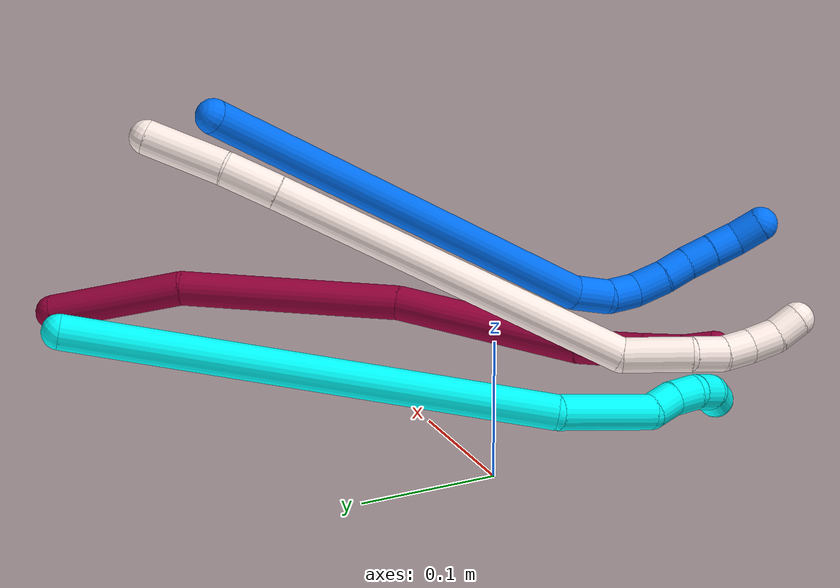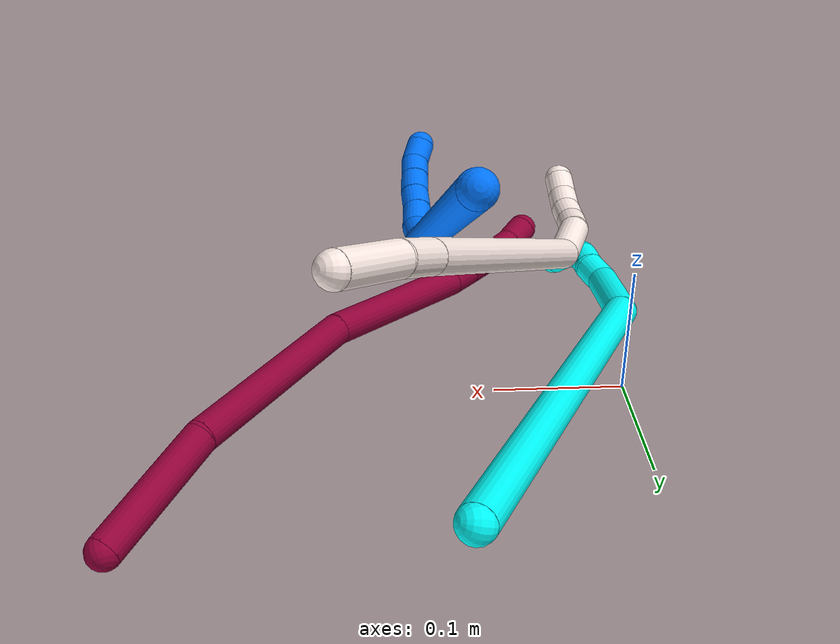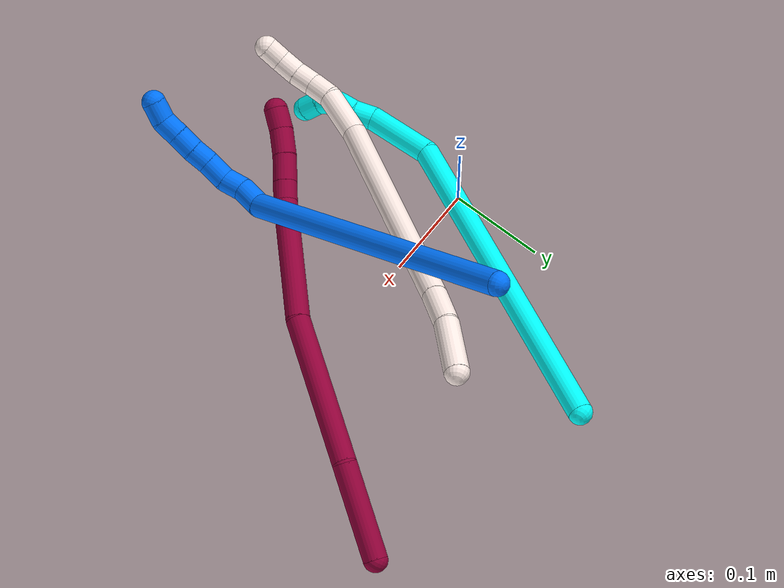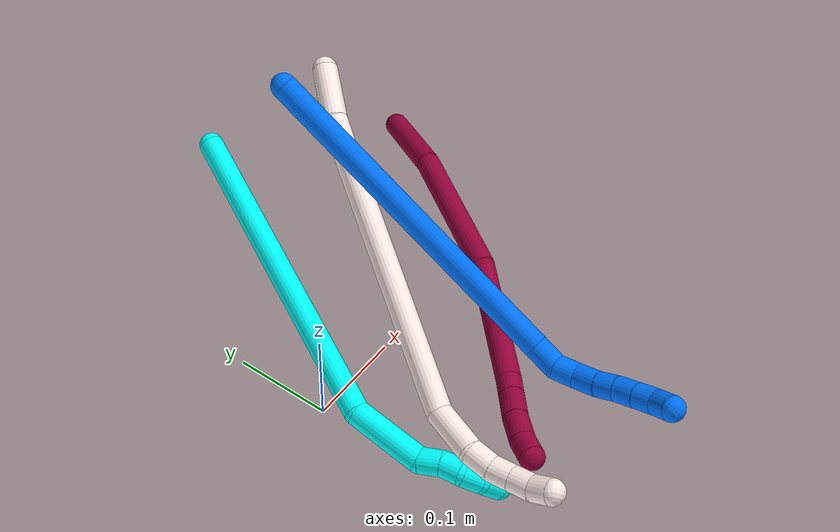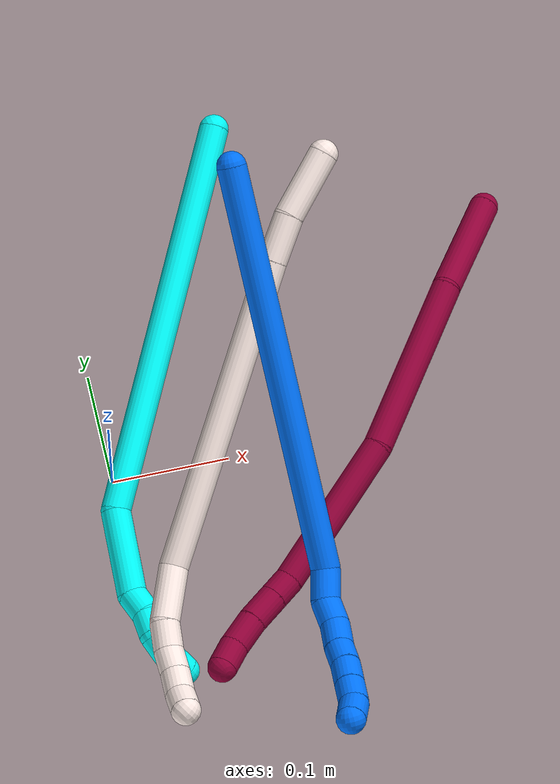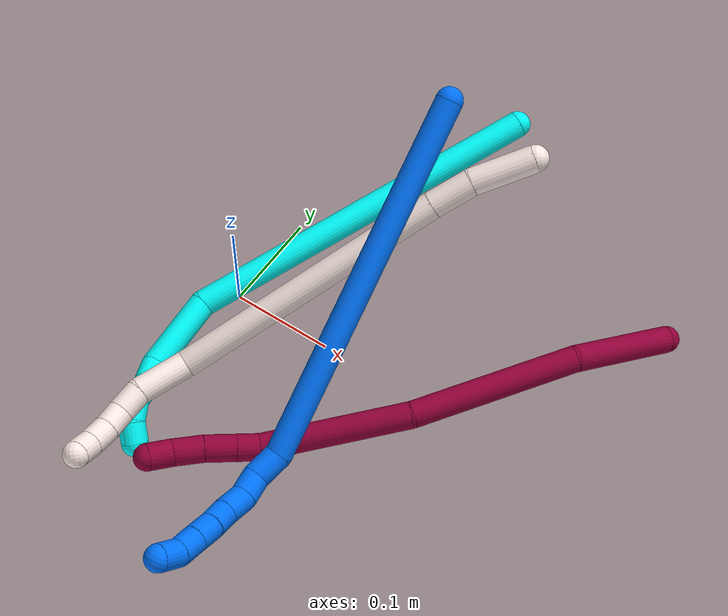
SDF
<sdf version="1.7">
 <world name="default">
  <model name="3">
   <static>0</static>
   <link name="3">
    <collision name="collision-cylinder-e_1_1_4">
     <pose>-0.073164 -0.105286 -0.114995 2.40024 -0.438757 -1.04173</pose>
     <geometry><cylinder><radius>0.0125</radius><length>0.344453</length></cylinder></geometry>
     <surface>
      <friction><ode><mu>1.16</mu><mu2>1.16</mu2><slip1>0</slip1><slip2>0</slip2></ode></friction>
      <contact><ode><kp>1e+06</kp><kd>1</kd><max_vel>0</max_vel><min_depth>0.001</min_depth></ode></contact>
     </surface>
    </collision>
    <visual name="visual-cylinder-e_1_1_4">
     <pose>-0.073164 -0.105286 -0.114995 2.40024 -0.438757 -1.04173</pose>
     <geometry><cylinder><radius>0.0125</radius><length>0.344453</length></cylinder></geometry>
     <material><ambient>0.003922 1 0.996078 1</ambient></material>
    </visual>
    <collision name="collision-cylinder-e_2_4_5">
     <pose>-0.16104 -0.241994 -0.241622 1.92537 -0.413731 -0.585639</pose>
     <geometry><cylinder><radius>0.0125</radius><length>0.073187</length></cylinder></geometry>
     <surface>
      <friction><ode><mu>1.16</mu><mu2>1.16</mu2><slip1>0</slip1><slip2>0</slip2></ode></friction>
      <contact><ode><kp>1e+06</kp><kd>1</kd><max_vel>0</max_vel><min_depth>0.001</min_depth></ode></contact>
     </surface>
    </collision>
    <visual name="visual-cylinder-e_2_4_5">
     <pose>-0.16104 -0.241994 -0.241622 1.92537 -0.413731 -0.585639</pose>
     <geometry><cylinder><radius>0.0125</radius><length>0.073187</length></cylinder></geometry>
     <material><ambient>0.003922 1 0.996078 1</ambient></material>
    </visual>
    <collision name="collision-cylinder-e_3_5_6">
     <pose>-0.181938 -0.282456 -0.2517 1.40042 -0.59335 -0.504226</pose>
     <geometry><cylinder><radius>0.0125</radius><length>0.022128</length></cylinder></geometry>
     <surface>
      <friction><ode><mu>1.16</mu><mu2>1.16</mu2><slip1>0</slip1><slip2>0</slip2></ode></friction>
      <contact><ode><kp>1e+06</kp><kd>1</kd><max_vel>0</max_vel><min_depth>0.001</min_depth></ode></contact>
     </surface>
    </collision>
    <visual name="visual-cylinder-e_3_5_6">
     <pose>-0.181938 -0.282456 -0.2517 1.40042 -0.59335 -0.504226</pose>
     <geometry><cylinder><radius>0.0125</radius><length>0.022128</length></cylinder></geometry>
     <material><ambient>0.003922 1 0.996078 1</ambient></material>
    </visual>
    <collision name="collision-cylinder-e_4_6_7">
     <pose>-0.193634 -0.299791 -0.251484 1.73093 -0.580374 -0.674629</pose>
     <geometry><cylinder><radius>0.0125</radius><length>0.020097</length></cylinder></geometry>
     <surface>
      <friction><ode><mu>1.16</mu><mu2>1.16</mu2><slip1>0</slip1><slip2>0</slip2></ode></friction>
      <contact><ode><kp>1e+06</kp><kd>1</kd><max_vel>0</max_vel><min_depth>0.001</min_depth></ode></contact>
     </surface>
    </collision>
    <visual name="visual-cylinder-e_4_6_7">
     <pose>-0.193634 -0.299791 -0.251484 1.73093 -0.580374 -0.674629</pose>
     <geometry><cylinder><radius>0.0125</radius><length>0.020097</length></cylinder></geometry>
     <material><ambient>0.003922 1 0.996078 1</ambient></material>
    </visual>
    <collision name="collision-cylinder-e_5_7_8">
     <pose>-0.200496 -0.318035 -0.252403 1.52848 -0.13495 -0.129373</pose>
     <geometry><cylinder><radius>0.0125</radius><length>0.020098</length></cylinder></geometry>
     <surface>
      <friction><ode><mu>1.16</mu><mu2>1.16</mu2><slip1>0</slip1><slip2>0</slip2></ode></friction>
      <contact><ode><kp>1e+06</kp><kd>1</kd><max_vel>0</max_vel><min_depth>0.001</min_depth></ode></contact>
     </surface>
    </collision>
    <visual name="visual-cylinder-e_5_7_8">
     <pose>-0.200496 -0.318035 -0.252403 1.52848 -0.13495 -0.129373</pose>
     <geometry><cylinder><radius>0.0125</radius><length>0.020098</length></cylinder></geometry>
     <material><ambient>0.003922 1 0.996078 1</ambient></material>
    </visual>
    <collision name="collision-cylinder-e_6_8_2">
     <pose>-0.198943 -0.337446 -0.250433 1.40859 0.294203 0.250472</pose>
     <geometry><cylinder><radius>0.0125</radius><length>0.020038</length></cylinder></geometry>
     <surface>
      <friction><ode><mu>1.16</mu><mu2>1.16</mu2><slip1>0</slip1><slip2>0</slip2></ode></friction>
      <contact><ode><kp>1e+06</kp><kd>1</kd><max_vel>0</max_vel><min_depth>0.001</min_depth></ode></contact>
     </surface>
    </collision>
    <visual name="visual-cylinder-e_6_8_2">
     <pose>-0.198943 -0.337446 -0.250433 1.40859 0.294203 0.250472</pose>
     <geometry><cylinder><radius>0.0125</radius><length>0.020038</length></cylinder></geometry>
     <material><ambient>0.003922 1 0.996078 1</ambient></material>
    </visual>
    <collision name="collision-sphere-2">
     <pose>-0.196038 -0.346909 -0.248885 0 -0 0</pose>
     <geometry><sphere><radius>0.0125</radius></sphere></geometry>
     <surface>
      <friction><ode><mu>1.16</mu><mu2>1.16</mu2><slip1>0</slip1><slip2>0</slip2></ode></friction>
      <contact><ode><kp>1e+06</kp><kd>1</kd><max_vel>0</max_vel><min_depth>0.001</min_depth></ode></contact>
     </surface>
    </collision>
    <visual name="visual-sphere-2">
     <pose>-0.196038 -0.346909 -0.248885 0 -0 0</pose>
     <geometry><sphere><radius>0.0125</radius></sphere></geometry>
     <material><ambient>0.003922 1 0.996078 1</ambient></material>
    </visual>
    <collision name="collision-sphere-4">
     <pose>-0.146329 -0.210573 -0.229989 0 -0 0</pose>
     <geometry><sphere><radius>0.0125</radius></sphere></geometry>
     <surface>
      <friction><ode><mu>1.16</mu><mu2>1.16</mu2><slip1>0</slip1><slip2>0</slip2></ode></friction>
      <contact><ode><kp>1e+06</kp><kd>1</kd><max_vel>0</max_vel><min_depth>0.001</min_depth></ode></contact>
     </surface>
    </collision>
    <visual name="visual-sphere-4">
     <pose>-0.146329 -0.210573 -0.229989 0 -0 0</pose>
     <geometry><sphere><radius>0.0125</radius></sphere></geometry>
     <material><ambient>0.003922 1 0.996078 1</ambient></material>
    </visual>
    <collision name="collision-sphere-1">
     <geometry><sphere><radius>0.0125</radius></sphere></geometry>
     <surface>
      <friction><ode><mu>1.16</mu><mu2>1.16</mu2><slip1>0</slip1><slip2>0</slip2></ode></friction>
      <contact><ode><kp>1e+06</kp><kd>1</kd><max_vel>0</max_vel><min_depth>0.001</min_depth></ode></contact>
     </surface>
    </collision>
    <visual name="visual-sphere-1">
     <geometry><sphere><radius>0.0125</radius></sphere></geometry>
     <material><ambient>0.003922 1 0.996078 1</ambient></material>
    </visual>
    <collision name="collision-sphere-8">
     <pose>-0.201848 -0.327984 -0.251982 0 -0 0</pose>
     <geometry><sphere><radius>0.0125</radius></sphere></geometry>
     <surface>
      <friction><ode><mu>1.16</mu><mu2>1.16</mu2><slip1>0</slip1><slip2>0</slip2></ode></friction>
      <contact><ode><kp>1e+06</kp><kd>1</kd><max_vel>0</max_vel><min_depth>0.001</min_depth></ode></contact>
     </surface>
    </collision>
    <visual name="visual-sphere-8">
     <pose>-0.201848 -0.327984 -0.251982 0 -0 0</pose>
     <geometry><sphere><radius>0.0125</radius></sphere></geometry>
     <material><ambient>0.003922 1 0.996078 1</ambient></material>
    </visual>
    <collision name="collision-sphere-5">
     <pose>-0.175752 -0.273416 -0.253255 0 -0 0</pose>
     <geometry><sphere><radius>0.0125</radius></sphere></geometry>
     <surface>
      <friction><ode><mu>1.16</mu><mu2>1.16</mu2><slip1>0</slip1><slip2>0</slip2></ode></friction>
      <contact><ode><kp>1e+06</kp><kd>1</kd><max_vel>0</max_vel><min_depth>0.001</min_depth></ode></contact>
     </surface>
    </collision>
    <visual name="visual-sphere-5">
     <pose>-0.175752 -0.273416 -0.253255 0 -0 0</pose>
     <geometry><sphere><radius>0.0125</radius></sphere></geometry>
     <material><ambient>0.003922 1 0.996078 1</ambient></material>
    </visual>
    <collision name="collision-sphere-6">
     <pose>-0.188124 -0.291496 -0.250145 0 -0 0</pose>
     <geometry><sphere><radius>0.0125</radius></sphere></geometry>
     <surface>
      <friction><ode><mu>1.16</mu><mu2>1.16</mu2><slip1>0</slip1><slip2>0</slip2></ode></friction>
      <contact><ode><kp>1e+06</kp><kd>1</kd><max_vel>0</max_vel><min_depth>0.001</min_depth></ode></contact>
     </surface>
    </collision>
    <visual name="visual-sphere-6">
     <pose>-0.188124 -0.291496 -0.250145 0 -0 0</pose>
     <geometry><sphere><radius>0.0125</radius></sphere></geometry>
     <material><ambient>0.003922 1 0.996078 1</ambient></material>
    </visual>
    <collision name="collision-sphere-7">
     <pose>-0.199144 -0.308087 -0.252824 0 -0 0</pose>
     <geometry><sphere><radius>0.0125</radius></sphere></geometry>
     <surface>
      <friction><ode><mu>1.16</mu><mu2>1.16</mu2><slip1>0</slip1><slip2>0</slip2></ode></friction>
      <contact><ode><kp>1e+06</kp><kd>1</kd><max_vel>0</max_vel><min_depth>0.001</min_depth></ode></contact>
     </surface>
    </collision>
    <visual name="visual-sphere-7">
     <pose>-0.199144 -0.308087 -0.252824 0 -0 0</pose>
     <geometry><sphere><radius>0.0125</radius></sphere></geometry>
     <material><ambient>0.003922 1 0.996078 1</ambient></material>
    </visual>
    <inertial>
     <pose>-0.105842 -0.158811 -0.156017 0 -0 0</pose>
     <mass>0.5</mass>
     <inertia>
      <ixx>-0.001112</ixx>
      <ixy>0</ixy>
      <ixz>0</ixz>
      <iyy>-0.003146</iyy>
      <iyz>0</iyz>
      <izz>0.003575</izz>
     </inertia>
    </inertial>
   </link>
   <pose>0.145092 0.258171 0.100116 0.922281 0.9504 1.27699</pose>
  </model>
  <model name="8">
   <static>0</static>
   <link name="8">
    <collision name="collision-cylinder-e_1_1_4">
     <pose>0.006402 -0.037825 -0.031713 2.26852 0.128972 0.275073</pose>
     <geometry><cylinder><radius>0.0125</radius><length>0.099548</length></cylinder></geometry>
     <surface>
      <friction><ode><mu>1.16</mu><mu2>1.16</mu2><slip1>0</slip1><slip2>0</slip2></ode></friction>
      <contact><ode><kp>1e+06</kp><kd>1</kd><max_vel>0</max_vel><min_depth>0.001</min_depth></ode></contact>
     </surface>
    </collision>
    <visual name="visual-cylinder-e_1_1_4">
     <pose>0.006402 -0.037825 -0.031713 2.26852 0.128972 0.275073</pose>
     <geometry><cylinder><radius>0.0125</radius><length>0.099548</length></cylinder></geometry>
     <material><ambient>0.584314 0 0.227451 1</ambient></material>
    </visual>
    <collision name="collision-cylinder-e_2_4_5">
     <pose>0.005709 -0.14331 -0.105932 2.13171 -0.088555 -0.159975</pose>
     <geometry><cylinder><radius>0.0125</radius><length>0.160436</length></cylinder></geometry>
     <surface>
      <friction><ode><mu>1.16</mu><mu2>1.16</mu2><slip1>0</slip1><slip2>0</slip2></ode></friction>
      <contact><ode><kp>1e+06</kp><kd>1</kd><max_vel>0</max_vel><min_depth>0.001</min_depth></ode></contact>
     </surface>
    </collision>
    <visual name="visual-cylinder-e_2_4_5">
     <pose>0.005709 -0.14331 -0.105932 2.13171 -0.088555 -0.159975</pose>
     <geometry><cylinder><radius>0.0125</radius><length>0.160436</length></cylinder></geometry>
     <material><ambient>0.584314 0 0.227451 1</ambient></material>
    </visual>
    <collision name="collision-cylinder-e_3_5_6">
     <pose>-0.007059 -0.27573 -0.171818 1.91727 -0.082223 -0.117036</pose>
     <geometry><cylinder><radius>0.0125</radius><length>0.138168</length></cylinder></geometry>
     <surface>
      <friction><ode><mu>1.16</mu><mu2>1.16</mu2><slip1>0</slip1><slip2>0</slip2></ode></friction>
      <contact><ode><kp>1e+06</kp><kd>1</kd><max_vel>0</max_vel><min_depth>0.001</min_depth></ode></contact>
     </surface>
    </collision>
    <visual name="visual-cylinder-e_3_5_6">
     <pose>-0.007059 -0.27573 -0.171818 1.91727 -0.082223 -0.117036</pose>
     <geometry><cylinder><radius>0.0125</radius><length>0.138168</length></cylinder></geometry>
     <material><ambient>0.584314 0 0.227451 1</ambient></material>
    </visual>
    <collision name="collision-cylinder-e_4_6_7">
     <pose>-0.011166 -0.350383 -0.199101 1.9465 0.146263 0.214479</pose>
     <geometry><cylinder><radius>0.0125</radius><length>0.021502</length></cylinder></geometry>
     <surface>
      <friction><ode><mu>1.16</mu><mu2>1.16</mu2><slip1>0</slip1><slip2>0</slip2></ode></friction>
      <contact><ode><kp>1e+06</kp><kd>1</kd><max_vel>0</max_vel><min_depth>0.001</min_depth></ode></contact>
     </surface>
    </collision>
    <visual name="visual-cylinder-e_4_6_7">
     <pose>-0.011166 -0.350383 -0.199101 1.9465 0.146263 0.214479</pose>
     <geometry><cylinder><radius>0.0125</radius><length>0.021502</length></cylinder></geometry>
     <material><ambient>0.584314 0 0.227451 1</ambient></material>
    </visual>
    <collision name="collision-cylinder-e_5_7_8">
     <pose>-0.007386 -0.373533 -0.208298 1.95074 0.153834 0.226556</pose>
     <geometry><cylinder><radius>0.0125</radius><length>0.028888</length></cylinder></geometry>
     <surface>
      <friction><ode><mu>1.16</mu><mu2>1.16</mu2><slip1>0</slip1><slip2>0</slip2></ode></friction>
      <contact><ode><kp>1e+06</kp><kd>1</kd><max_vel>0</max_vel><min_depth>0.001</min_depth></ode></contact>
     </surface>
    </collision>
    <visual name="visual-cylinder-e_5_7_8">
     <pose>-0.007386 -0.373533 -0.208298 1.95074 0.153834 0.226556</pose>
     <geometry><cylinder><radius>0.0125</radius><length>0.028888</length></cylinder></geometry>
     <material><ambient>0.584314 0 0.227451 1</ambient></material>
    </visual>
    <collision name="collision-cylinder-e_6_8_9">
     <pose>-0.003932 -0.399473 -0.219864 2.03007 0.08747 0.140696</pose>
     <geometry><cylinder><radius>0.0125</radius><length>0.02841</length></cylinder></geometry>
     <surface>
      <friction><ode><mu>1.16</mu><mu2>1.16</mu2><slip1>0</slip1><slip2>0</slip2></ode></friction>
      <contact><ode><kp>1e+06</kp><kd>1</kd><max_vel>0</max_vel><min_depth>0.001</min_depth></ode></contact>
     </surface>
    </collision>
    <visual name="visual-cylinder-e_6_8_9">
     <pose>-0.003932 -0.399473 -0.219864 2.03007 0.08747 0.140696</pose>
     <geometry><cylinder><radius>0.0125</radius><length>0.02841</length></cylinder></geometry>
     <material><ambient>0.584314 0 0.227451 1</ambient></material>
    </visual>
    <collision name="collision-cylinder-e_7_9_2">
     <pose>-0.001275 -0.421414 -0.232854 2.1985 0.123204 0.240755</pose>
     <geometry><cylinder><radius>0.0125</radius><length>0.023048</length></cylinder></geometry>
     <surface>
      <friction><ode><mu>1.16</mu><mu2>1.16</mu2><slip1>0</slip1><slip2>0</slip2></ode></friction>
      <contact><ode><kp>1e+06</kp><kd>1</kd><max_vel>0</max_vel><min_depth>0.001</min_depth></ode></contact>
     </surface>
    </collision>
    <visual name="visual-cylinder-e_7_9_2">
     <pose>-0.001275 -0.421414 -0.232854 2.1985 0.123204 0.240755</pose>
     <geometry><cylinder><radius>0.0125</radius><length>0.023048</length></cylinder></geometry>
     <material><ambient>0.584314 0 0.227451 1</ambient></material>
    </visual>
    <collision name="collision-sphere-2">
     <pose>0.000141 -0.43067 -0.23957 0 -0 0</pose>
     <geometry><sphere><radius>0.0125</radius></sphere></geometry>
     <surface>
      <friction><ode><mu>1.16</mu><mu2>1.16</mu2><slip1>0</slip1><slip2>0</slip2></ode></friction>
      <contact><ode><kp>1e+06</kp><kd>1</kd><max_vel>0</max_vel><min_depth>0.001</min_depth></ode></contact>
     </surface>
    </collision>
    <visual name="visual-sphere-2">
     <pose>0.000141 -0.43067 -0.23957 0 -0 0</pose>
     <geometry><sphere><radius>0.0125</radius></sphere></geometry>
     <material><ambient>0.584314 0 0.227451 1</ambient></material>
    </visual>
    <collision name="collision-sphere-9">
     <pose>-0.002691 -0.412157 -0.226137 0 -0 0</pose>
     <geometry><sphere><radius>0.0125</radius></sphere></geometry>
     <surface>
      <friction><ode><mu>1.16</mu><mu2>1.16</mu2><slip1>0</slip1><slip2>0</slip2></ode></friction>
      <contact><ode><kp>1e+06</kp><kd>1</kd><max_vel>0</max_vel><min_depth>0.001</min_depth></ode></contact>
     </surface>
    </collision>
    <visual name="visual-sphere-9">
     <pose>-0.002691 -0.412157 -0.226137 0 -0 0</pose>
     <geometry><sphere><radius>0.0125</radius></sphere></geometry>
     <material><ambient>0.584314 0 0.227451 1</ambient></material>
    </visual>
    <collision name="collision-sphere-4">
     <pose>0.012803 -0.07565 -0.063426 0 -0 0</pose>
     <geometry><sphere><radius>0.0125</radius></sphere></geometry>
     <surface>
      <friction><ode><mu>1.16</mu><mu2>1.16</mu2><slip1>0</slip1><slip2>0</slip2></ode></friction>
      <contact><ode><kp>1e+06</kp><kd>1</kd><max_vel>0</max_vel><min_depth>0.001</min_depth></ode></contact>
     </surface>
    </collision>
    <visual name="visual-sphere-4">
     <pose>0.012803 -0.07565 -0.063426 0 -0 0</pose>
     <geometry><sphere><radius>0.0125</radius></sphere></geometry>
     <material><ambient>0.584314 0 0.227451 1</ambient></material>
    </visual>
    <collision name="collision-sphere-1">
     <geometry><sphere><radius>0.0125</radius></sphere></geometry>
     <surface>
      <friction><ode><mu>1.16</mu><mu2>1.16</mu2><slip1>0</slip1><slip2>0</slip2></ode></friction>
      <contact><ode><kp>1e+06</kp><kd>1</kd><max_vel>0</max_vel><min_depth>0.001</min_depth></ode></contact>
     </surface>
    </collision>
    <visual name="visual-sphere-1">
     <geometry><sphere><radius>0.0125</radius></sphere></geometry>
     <material><ambient>0.584314 0 0.227451 1</ambient></material>
    </visual>
    <collision name="collision-sphere-8">
     <pose>-0.005173 -0.386788 -0.213591 0 -0 0</pose>
     <geometry><sphere><radius>0.0125</radius></sphere></geometry>
     <surface>
      <friction><ode><mu>1.16</mu><mu2>1.16</mu2><slip1>0</slip1><slip2>0</slip2></ode></friction>
      <contact><ode><kp>1e+06</kp><kd>1</kd><max_vel>0</max_vel><min_depth>0.001</min_depth></ode></contact>
     </surface>
    </collision>
    <visual name="visual-sphere-8">
     <pose>-0.005173 -0.386788 -0.213591 0 -0 0</pose>
     <geometry><sphere><radius>0.0125</radius></sphere></geometry>
     <material><ambient>0.584314 0 0.227451 1</ambient></material>
    </visual>
    <collision name="collision-sphere-5">
     <pose>-0.001385 -0.21097 -0.148438 0 -0 0</pose>
     <geometry><sphere><radius>0.0125</radius></sphere></geometry>
     <surface>
      <friction><ode><mu>1.16</mu><mu2>1.16</mu2><slip1>0</slip1><slip2>0</slip2></ode></friction>
      <contact><ode><kp>1e+06</kp><kd>1</kd><max_vel>0</max_vel><min_depth>0.001</min_depth></ode></contact>
     </surface>
    </collision>
    <visual name="visual-sphere-5">
     <pose>-0.001385 -0.21097 -0.148438 0 -0 0</pose>
     <geometry><sphere><radius>0.0125</radius></sphere></geometry>
     <material><ambient>0.584314 0 0.227451 1</ambient></material>
    </visual>
    <collision name="collision-sphere-6">
     <pose>-0.012733 -0.340489 -0.195199 0 -0 0</pose>
     <geometry><sphere><radius>0.0125</radius></sphere></geometry>
     <surface>
      <friction><ode><mu>1.16</mu><mu2>1.16</mu2><slip1>0</slip1><slip2>0</slip2></ode></friction>
      <contact><ode><kp>1e+06</kp><kd>1</kd><max_vel>0</max_vel><min_depth>0.001</min_depth></ode></contact>
     </surface>
    </collision>
    <visual name="visual-sphere-6">
     <pose>-0.012733 -0.340489 -0.195199 0 -0 0</pose>
     <geometry><sphere><radius>0.0125</radius></sphere></geometry>
     <material><ambient>0.584314 0 0.227451 1</ambient></material>
    </visual>
    <collision name="collision-sphere-7">
     <pose>-0.009599 -0.360278 -0.203004 0 -0 0</pose>
     <geometry><sphere><radius>0.0125</radius></sphere></geometry>
     <surface>
      <friction><ode><mu>1.16</mu><mu2>1.16</mu2><slip1>0</slip1><slip2>0</slip2></ode></friction>
      <contact><ode><kp>1e+06</kp><kd>1</kd><max_vel>0</max_vel><min_depth>0.001</min_depth></ode></contact>
     </surface>
    </collision>
    <visual name="visual-sphere-7">
     <pose>-0.009599 -0.360278 -0.203004 0 -0 0</pose>
     <geometry><sphere><radius>0.0125</radius></sphere></geometry>
     <material><ambient>0.584314 0 0.227451 1</ambient></material>
    </visual>
    <inertial>
     <pose>-3.3e-05 -0.208482 -0.131607 0 -0 0</pose>
     <mass>0.5</mass>
     <inertia>
      <ixx>0.000602</ixx>
      <ixy>0</ixy>
      <ixz>0</ixz>
      <iyy>-0.000399</iyy>
      <iyz>0</iyz>
      <izz>0.000599</izz>
     </inertia>
    </inertial>
   </link>
   <pose>0.364426 0.178485 0.015729 2.72255 -1.0745 2.37417</pose>
  </model>
  <model name="11">
   <static>0</static>
   <link name="11">
    <collision name="collision-cylinder-e_1_1_4">
     <pose>-0.002398 -0.007444 -0.02843 2.88551 -0.08142 -0.612832</pose>
     <geometry><cylinder><radius>0.0125</radius><length>0.058972</length></cylinder></geometry>
     <surface>
      <friction><ode><mu>1.16</mu><mu2>1.16</mu2><slip1>0</slip1><slip2>0</slip2></ode></friction>
      <contact><ode><kp>1e+06</kp><kd>1</kd><max_vel>0</max_vel><min_depth>0.001</min_depth></ode></contact>
     </surface>
    </collision>
    <visual name="visual-cylinder-e_1_1_4">
     <pose>-0.002398 -0.007444 -0.02843 2.88551 -0.08142 -0.612832</pose>
     <geometry><cylinder><radius>0.0125</radius><length>0.058972</length></cylinder></geometry>
     <material><ambient>1 0.933333 0.909804 1</ambient></material>
    </visual>
    <collision name="collision-cylinder-e_2_4_5">
     <pose>-0.004521 -0.022766 -0.075244 2.73671 0.013769 0.067058</pose>
     <geometry><cylinder><radius>0.0125</radius><length>0.040005</length></cylinder></geometry>
     <surface>
      <friction><ode><mu>1.16</mu><mu2>1.16</mu2><slip1>0</slip1><slip2>0</slip2></ode></friction>
      <contact><ode><kp>1e+06</kp><kd>1</kd><max_vel>0</max_vel><min_depth>0.001</min_depth></ode></contact>
     </surface>
    </collision>
    <visual name="visual-cylinder-e_2_4_5">
     <pose>-0.004521 -0.022766 -0.075244 2.73671 0.013769 0.067058</pose>
     <geometry><cylinder><radius>0.0125</radius><length>0.040005</length></cylinder></geometry>
     <material><ambient>1 0.933333 0.909804 1</ambient></material>
    </visual>
    <collision name="collision-cylinder-e_3_5_6">
     <pose>0.000744 -0.087439 -0.212972 2.69742 0.037731 0.166723</pose>
     <geometry><cylinder><radius>0.0125</radius><length>0.264526</length></cylinder></geometry>
     <surface>
      <friction><ode><mu>1.16</mu><mu2>1.16</mu2><slip1>0</slip1><slip2>0</slip2></ode></friction>
      <contact><ode><kp>1e+06</kp><kd>1</kd><max_vel>0</max_vel><min_depth>0.001</min_depth></ode></contact>
     </surface>
    </collision>
    <visual name="visual-cylinder-e_3_5_6">
     <pose>0.000744 -0.087439 -0.212972 2.69742 0.037731 0.166723</pose>
     <geometry><cylinder><radius>0.0125</radius><length>0.264526</length></cylinder></geometry>
     <material><ambient>1 0.933333 0.909804 1</ambient></material>
    </visual>
    <collision name="collision-cylinder-e_4_6_7">
     <pose>-0.003528 -0.157436 -0.351061 2.52791 -0.383893 -1.10036</pose>
     <geometry><cylinder><radius>0.0125</radius><length>0.049455</length></cylinder></geometry>
     <surface>
      <friction><ode><mu>1.16</mu><mu2>1.16</mu2><slip1>0</slip1><slip2>0</slip2></ode></friction>
      <contact><ode><kp>1e+06</kp><kd>1</kd><max_vel>0</max_vel><min_depth>0.001</min_depth></ode></contact>
     </surface>
    </collision>
    <visual name="visual-cylinder-e_4_6_7">
     <pose>-0.003528 -0.157436 -0.351061 2.52791 -0.383893 -1.10036</pose>
     <geometry><cylinder><radius>0.0125</radius><length>0.049455</length></cylinder></geometry>
     <material><ambient>1 0.933333 0.909804 1</ambient></material>
    </visual>
    <collision name="collision-cylinder-e_5_7_8">
     <pose>-0.015815 -0.179912 -0.376999 2.23064 -0.252314 -0.506727</pose>
     <geometry><cylinder><radius>0.0125</radius><length>0.024239</length></cylinder></geometry>
     <surface>
      <friction><ode><mu>1.16</mu><mu2>1.16</mu2><slip1>0</slip1><slip2>0</slip2></ode></friction>
      <contact><ode><kp>1e+06</kp><kd>1</kd><max_vel>0</max_vel><min_depth>0.001</min_depth></ode></contact>
     </surface>
    </collision>
    <visual name="visual-cylinder-e_5_7_8">
     <pose>-0.015815 -0.179912 -0.376999 2.23064 -0.252314 -0.506727</pose>
     <geometry><cylinder><radius>0.0125</radius><length>0.024239</length></cylinder></geometry>
     <material><ambient>1 0.933333 0.909804 1</ambient></material>
    </visual>
    <collision name="collision-cylinder-e_6_8_9">
     <pose>-0.023417 -0.197503 -0.388773 2.0741 -0.449043 -0.737528</pose>
     <geometry><cylinder><radius>0.0125</radius><length>0.021082</length></cylinder></geometry>
     <surface>
      <friction><ode><mu>1.16</mu><mu2>1.16</mu2><slip1>0</slip1><slip2>0</slip2></ode></friction>
      <contact><ode><kp>1e+06</kp><kd>1</kd><max_vel>0</max_vel><min_depth>0.001</min_depth></ode></contact>
     </surface>
    </collision>
    <visual name="visual-cylinder-e_6_8_9">
     <pose>-0.023417 -0.197503 -0.388773 2.0741 -0.449043 -0.737528</pose>
     <geometry><cylinder><radius>0.0125</radius><length>0.021082</length></cylinder></geometry>
     <material><ambient>1 0.933333 0.909804 1</ambient></material>
    </visual>
    <collision name="collision-cylinder-e_7_9_10">
     <pose>-0.033948 -0.213484 -0.398172 2.13218 -0.581911 -0.993461</pose>
     <geometry><cylinder><radius>0.0125</radius><length>0.021672</length></cylinder></geometry>
     <surface>
      <friction><ode><mu>1.16</mu><mu2>1.16</mu2><slip1>0</slip1><slip2>0</slip2></ode></friction>
      <contact><ode><kp>1e+06</kp><kd>1</kd><max_vel>0</max_vel><min_depth>0.001</min_depth></ode></contact>
     </surface>
    </collision>
    <visual name="visual-cylinder-e_7_9_10">
     <pose>-0.033948 -0.213484 -0.398172 2.13218 -0.581911 -0.993461</pose>
     <geometry><cylinder><radius>0.0125</radius><length>0.021672</length></cylinder></geometry>
     <material><ambient>1 0.933333 0.909804 1</ambient></material>
    </visual>
    <collision name="collision-cylinder-e_8_10_2">
     <pose>-0.047365 -0.22727 -0.405698 1.98714 -0.839444 -1.20151</pose>
     <geometry><cylinder><radius>0.0125</radius><length>0.020049</length></cylinder></geometry>
     <surface>
      <friction><ode><mu>1.16</mu><mu2>1.16</mu2><slip1>0</slip1><slip2>0</slip2></ode></friction>
      <contact><ode><kp>1e+06</kp><kd>1</kd><max_vel>0</max_vel><min_depth>0.001</min_depth></ode></contact>
     </surface>
    </collision>
    <visual name="visual-cylinder-e_8_10_2">
     <pose>-0.047365 -0.22727 -0.405698 1.98714 -0.839444 -1.20151</pose>
     <geometry><cylinder><radius>0.0125</radius><length>0.020049</length></cylinder></geometry>
     <material><ambient>1 0.933333 0.909804 1</ambient></material>
    </visual>
    <collision name="collision-sphere-2">
     <pose>-0.054825 -0.233394 -0.408406 0 -0 0</pose>
     <geometry><sphere><radius>0.0125</radius></sphere></geometry>
     <surface>
      <friction><ode><mu>1.16</mu><mu2>1.16</mu2><slip1>0</slip1><slip2>0</slip2></ode></friction>
      <contact><ode><kp>1e+06</kp><kd>1</kd><max_vel>0</max_vel><min_depth>0.001</min_depth></ode></contact>
     </surface>
    </collision>
    <visual name="visual-sphere-2">
     <pose>-0.054825 -0.233394 -0.408406 0 -0 0</pose>
     <geometry><sphere><radius>0.0125</radius></sphere></geometry>
     <material><ambient>1 0.933333 0.909804 1</ambient></material>
    </visual>
    <collision name="collision-sphere-10">
     <pose>-0.039904 -0.221147 -0.402991 0 -0 0</pose>
     <geometry><sphere><radius>0.0125</radius></sphere></geometry>
     <surface>
      <friction><ode><mu>1.16</mu><mu2>1.16</mu2><slip1>0</slip1><slip2>0</slip2></ode></friction>
      <contact><ode><kp>1e+06</kp><kd>1</kd><max_vel>0</max_vel><min_depth>0.001</min_depth></ode></contact>
     </surface>
    </collision>
    <visual name="visual-sphere-10">
     <pose>-0.039904 -0.221147 -0.402991 0 -0 0</pose>
     <geometry><sphere><radius>0.0125</radius></sphere></geometry>
     <material><ambient>1 0.933333 0.909804 1</ambient></material>
    </visual>
    <collision name="collision-sphere-9">
     <pose>-0.027993 -0.205821 -0.393353 0 -0 0</pose>
     <geometry><sphere><radius>0.0125</radius></sphere></geometry>
     <surface>
      <friction><ode><mu>1.16</mu><mu2>1.16</mu2><slip1>0</slip1><slip2>0</slip2></ode></friction>
      <contact><ode><kp>1e+06</kp><kd>1</kd><max_vel>0</max_vel><min_depth>0.001</min_depth></ode></contact>
     </surface>
    </collision>
    <visual name="visual-sphere-9">
     <pose>-0.027993 -0.205821 -0.393353 0 -0 0</pose>
     <geometry><sphere><radius>0.0125</radius></sphere></geometry>
     <material><ambient>1 0.933333 0.909804 1</ambient></material>
    </visual>
    <collision name="collision-sphere-4">
     <pose>-0.004796 -0.014888 -0.05686 0 -0 0</pose>
     <geometry><sphere><radius>0.0125</radius></sphere></geometry>
     <surface>
      <friction><ode><mu>1.16</mu><mu2>1.16</mu2><slip1>0</slip1><slip2>0</slip2></ode></friction>
      <contact><ode><kp>1e+06</kp><kd>1</kd><max_vel>0</max_vel><min_depth>0.001</min_depth></ode></contact>
     </surface>
    </collision>
    <visual name="visual-sphere-4">
     <pose>-0.004796 -0.014888 -0.05686 0 -0 0</pose>
     <geometry><sphere><radius>0.0125</radius></sphere></geometry>
     <material><ambient>1 0.933333 0.909804 1</ambient></material>
    </visual>
    <collision name="collision-sphere-1">
     <geometry><sphere><radius>0.0125</radius></sphere></geometry>
     <surface>
      <friction><ode><mu>1.16</mu><mu2>1.16</mu2><slip1>0</slip1><slip2>0</slip2></ode></friction>
      <contact><ode><kp>1e+06</kp><kd>1</kd><max_vel>0</max_vel><min_depth>0.001</min_depth></ode></contact>
     </surface>
    </collision>
    <visual name="visual-sphere-1">
     <geometry><sphere><radius>0.0125</radius></sphere></geometry>
     <material><ambient>1 0.933333 0.909804 1</ambient></material>
    </visual>
    <collision name="collision-sphere-8">
     <pose>-0.018841 -0.189184 -0.384192 0 -0 0</pose>
     <geometry><sphere><radius>0.0125</radius></sphere></geometry>
     <surface>
      <friction><ode><mu>1.16</mu><mu2>1.16</mu2><slip1>0</slip1><slip2>0</slip2></ode></friction>
      <contact><ode><kp>1e+06</kp><kd>1</kd><max_vel>0</max_vel><min_depth>0.001</min_depth></ode></contact>
     </surface>
    </collision>
    <visual name="visual-sphere-8">
     <pose>-0.018841 -0.189184 -0.384192 0 -0 0</pose>
     <geometry><sphere><radius>0.0125</radius></sphere></geometry>
     <material><ambient>1 0.933333 0.909804 1</ambient></material>
    </visual>
    <collision name="collision-sphere-5">
     <pose>-0.004245 -0.030645 -0.093627 0 -0 0</pose>
     <geometry><sphere><radius>0.0125</radius></sphere></geometry>
     <surface>
      <friction><ode><mu>1.16</mu><mu2>1.16</mu2><slip1>0</slip1><slip2>0</slip2></ode></friction>
      <contact><ode><kp>1e+06</kp><kd>1</kd><max_vel>0</max_vel><min_depth>0.001</min_depth></ode></contact>
     </surface>
    </collision>
    <visual name="visual-sphere-5">
     <pose>-0.004245 -0.030645 -0.093627 0 -0 0</pose>
     <geometry><sphere><radius>0.0125</radius></sphere></geometry>
     <material><ambient>1 0.933333 0.909804 1</ambient></material>
    </visual>
    <collision name="collision-sphere-6">
     <pose>0.005733 -0.144233 -0.332316 0 -0 0</pose>
     <geometry><sphere><radius>0.0125</radius></sphere></geometry>
     <surface>
      <friction><ode><mu>1.16</mu><mu2>1.16</mu2><slip1>0</slip1><slip2>0</slip2></ode></friction>
      <contact><ode><kp>1e+06</kp><kd>1</kd><max_vel>0</max_vel><min_depth>0.001</min_depth></ode></contact>
     </surface>
    </collision>
    <visual name="visual-sphere-6">
     <pose>0.005733 -0.144233 -0.332316 0 -0 0</pose>
     <geometry><sphere><radius>0.0125</radius></sphere></geometry>
     <material><ambient>1 0.933333 0.909804 1</ambient></material>
    </visual>
    <collision name="collision-sphere-7">
     <pose>-0.01279 -0.17064 -0.369805 0 -0 0</pose>
     <geometry><sphere><radius>0.0125</radius></sphere></geometry>
     <surface>
      <friction><ode><mu>1.16</mu><mu2>1.16</mu2><slip1>0</slip1><slip2>0</slip2></ode></friction>
      <contact><ode><kp>1e+06</kp><kd>1</kd><max_vel>0</max_vel><min_depth>0.001</min_depth></ode></contact>
     </surface>
    </collision>
    <visual name="visual-sphere-7">
     <pose>-0.01279 -0.17064 -0.369805 0 -0 0</pose>
     <geometry><sphere><radius>0.0125</radius></sphere></geometry>
     <material><ambient>1 0.933333 0.909804 1</ambient></material>
    </visual>
    <inertial>
     <pose>-0.005725 -0.099947 -0.224964 0 -0 0</pose>
     <mass>0.5</mass>
     <inertia>
      <ixx>0.001791</ixx>
      <ixy>0</ixy>
      <ixz>0</ixz>
      <iyy>-0.001188</iyy>
      <iyz>0</iyz>
      <izz>0.000605</izz>
     </inertia>
    </inertial>
   </link>
   <pose>0.217075 0.160782 0.200429 0.706316 1.15992 1.29528</pose>
  </model>
  <model name="14">
   <static>0</static>
   <link name="14">
    <collision name="collision-cylinder-e_1_1_4">
     <pose>0.000482 -0.005705 -0.170839 3.10821 0.00282 0.168534</pose>
     <geometry><cylinder><radius>0.0125</radius><length>0.34187</length></cylinder></geometry>
     <surface>
      <friction><ode><mu>1.16</mu><mu2>1.16</mu2><slip1>0</slip1><slip2>0</slip2></ode></friction>
      <contact><ode><kp>1e+06</kp><kd>1</kd><max_vel>0</max_vel><min_depth>0.001</min_depth></ode></contact>
     </surface>
    </collision>
    <visual name="visual-cylinder-e_1_1_4">
     <pose>0.000482 -0.005705 -0.170839 3.10821 0.00282 0.168534</pose>
     <geometry><cylinder><radius>0.0125</radius><length>0.34187</length></cylinder></geometry>
     <material><ambient>0 0.462745 1 1</ambient></material>
    </visual>
    <collision name="collision-cylinder-e_2_4_5">
     <pose>-0.001377 -0.01708 -0.353978 2.70959 -0.171126 -0.745273</pose>
     <geometry><cylinder><radius>0.0125</radius><length>0.027491</length></cylinder></geometry>
     <surface>
      <friction><ode><mu>1.16</mu><mu2>1.16</mu2><slip1>0</slip1><slip2>0</slip2></ode></friction>
      <contact><ode><kp>1e+06</kp><kd>1</kd><max_vel>0</max_vel><min_depth>0.001</min_depth></ode></contact>
     </surface>
    </collision>
    <visual name="visual-cylinder-e_2_4_5">
     <pose>-0.001377 -0.01708 -0.353978 2.70959 -0.171126 -0.745273</pose>
     <geometry><cylinder><radius>0.0125</radius><length>0.027491</length></cylinder></geometry>
     <material><ambient>0 0.462745 1 1</ambient></material>
    </visual>
    <collision name="collision-cylinder-e_3_5_6">
     <pose>-0.001549 -0.028616 -0.375448 2.57258 0.196644 0.650639</pose>
     <geometry><cylinder><radius>0.0125</radius><length>0.022196</length></cylinder></geometry>
     <surface>
      <friction><ode><mu>1.16</mu><mu2>1.16</mu2><slip1>0</slip1><slip2>0</slip2></ode></friction>
      <contact><ode><kp>1e+06</kp><kd>1</kd><max_vel>0</max_vel><min_depth>0.001</min_depth></ode></contact>
     </surface>
    </collision>
    <visual name="visual-cylinder-e_3_5_6">
     <pose>-0.001549 -0.028616 -0.375448 2.57258 0.196644 0.650639</pose>
     <geometry><cylinder><radius>0.0125</radius><length>0.022196</length></cylinder></geometry>
     <material><ambient>0 0.462745 1 1</ambient></material>
    </visual>
    <collision name="collision-cylinder-e_4_6_7">
     <pose>0.001323 -0.044166 -0.392182 2.23387 0.05721 0.117173</pose>
     <geometry><cylinder><radius>0.0125</radius><length>0.02462</length></cylinder></geometry>
     <surface>
      <friction><ode><mu>1.16</mu><mu2>1.16</mu2><slip1>0</slip1><slip2>0</slip2></ode></friction>
      <contact><ode><kp>1e+06</kp><kd>1</kd><max_vel>0</max_vel><min_depth>0.001</min_depth></ode></contact>
     </surface>
    </collision>
    <visual name="visual-cylinder-e_4_6_7">
     <pose>0.001323 -0.044166 -0.392182 2.23387 0.05721 0.117173</pose>
     <geometry><cylinder><radius>0.0125</radius><length>0.02462</length></cylinder></geometry>
     <material><ambient>0 0.462745 1 1</ambient></material>
    </visual>
    <collision name="collision-cylinder-e_5_7_8">
     <pose>0.003887 -0.061846 -0.405539 2.19772 0.186295 0.362047</pose>
     <geometry><cylinder><radius>0.0125</radius><length>0.020091</length></cylinder></geometry>
     <surface>
      <friction><ode><mu>1.16</mu><mu2>1.16</mu2><slip1>0</slip1><slip2>0</slip2></ode></friction>
      <contact><ode><kp>1e+06</kp><kd>1</kd><max_vel>0</max_vel><min_depth>0.001</min_depth></ode></contact>
     </surface>
    </collision>
    <visual name="visual-cylinder-e_5_7_8">
     <pose>0.003887 -0.061846 -0.405539 2.19772 0.186295 0.362047</pose>
     <geometry><cylinder><radius>0.0125</radius><length>0.020091</length></cylinder></geometry>
     <material><ambient>0 0.462745 1 1</ambient></material>
    </visual>
    <collision name="collision-cylinder-e_6_8_9">
     <pose>0.006607 -0.078512 -0.417515 2.19037 0.080445 0.155957</pose>
     <geometry><cylinder><radius>0.0125</radius><length>0.021371</length></cylinder></geometry>
     <surface>
      <friction><ode><mu>1.16</mu><mu2>1.16</mu2><slip1>0</slip1><slip2>0</slip2></ode></friction>
      <contact><ode><kp>1e+06</kp><kd>1</kd><max_vel>0</max_vel><min_depth>0.001</min_depth></ode></contact>
     </surface>
    </collision>
    <visual name="visual-cylinder-e_6_8_9">
     <pose>0.006607 -0.078512 -0.417515 2.19037 0.080445 0.155957</pose>
     <geometry><cylinder><radius>0.0125</radius><length>0.021371</length></cylinder></geometry>
     <material><ambient>0 0.462745 1 1</ambient></material>
    </visual>
    <collision name="collision-cylinder-e_7_9_10">
     <pose>0.008357 -0.095503 -0.429947 2.2149 0.085452 0.170721</pose>
     <geometry><cylinder><radius>0.0125</radius><length>0.020885</length></cylinder></geometry>
     <surface>
      <friction><ode><mu>1.16</mu><mu2>1.16</mu2><slip1>0</slip1><slip2>0</slip2></ode></friction>
      <contact><ode><kp>1e+06</kp><kd>1</kd><max_vel>0</max_vel><min_depth>0.001</min_depth></ode></contact>
     </surface>
    </collision>
    <visual name="visual-cylinder-e_7_9_10">
     <pose>0.008357 -0.095503 -0.429947 2.2149 0.085452 0.170721</pose>
     <geometry><cylinder><radius>0.0125</radius><length>0.020885</length></cylinder></geometry>
     <material><ambient>0 0.462745 1 1</ambient></material>
    </visual>
    <collision name="collision-cylinder-e_8_10_2">
     <pose>0.007816 -0.113818 -0.439847 1.92115 -0.133752 -0.190982</pose>
     <geometry><cylinder><radius>0.0125</radius><length>0.021476</length></cylinder></geometry>
     <surface>
      <friction><ode><mu>1.16</mu><mu2>1.16</mu2><slip1>0</slip1><slip2>0</slip2></ode></friction>
      <contact><ode><kp>1e+06</kp><kd>1</kd><max_vel>0</max_vel><min_depth>0.001</min_depth></ode></contact>
     </surface>
    </collision>
    <visual name="visual-cylinder-e_8_10_2">
     <pose>0.007816 -0.113818 -0.439847 1.92115 -0.133752 -0.190982</pose>
     <geometry><cylinder><radius>0.0125</radius><length>0.021476</length></cylinder></geometry>
     <material><ambient>0 0.462745 1 1</ambient></material>
    </visual>
    <collision name="collision-sphere-2">
     <pose>0.006384 -0.123814 -0.4435 0 -0 0</pose>
     <geometry><sphere><radius>0.0125</radius></sphere></geometry>
     <surface>
      <friction><ode><mu>1.16</mu><mu2>1.16</mu2><slip1>0</slip1><slip2>0</slip2></ode></friction>
      <contact><ode><kp>1e+06</kp><kd>1</kd><max_vel>0</max_vel><min_depth>0.001</min_depth></ode></contact>
     </surface>
    </collision>
    <visual name="visual-sphere-2">
     <pose>0.006384 -0.123814 -0.4435 0 -0 0</pose>
     <geometry><sphere><radius>0.0125</radius></sphere></geometry>
     <material><ambient>0 0.462745 1 1</ambient></material>
    </visual>
    <collision name="collision-sphere-10">
     <pose>0.009248 -0.103822 -0.436195 0 -0 0</pose>
     <geometry><sphere><radius>0.0125</radius></sphere></geometry>
     <surface>
      <friction><ode><mu>1.16</mu><mu2>1.16</mu2><slip1>0</slip1><slip2>0</slip2></ode></friction>
      <contact><ode><kp>1e+06</kp><kd>1</kd><max_vel>0</max_vel><min_depth>0.001</min_depth></ode></contact>
     </surface>
    </collision>
    <visual name="visual-sphere-10">
     <pose>0.009248 -0.103822 -0.436195 0 -0 0</pose>
     <geometry><sphere><radius>0.0125</radius></sphere></geometry>
     <material><ambient>0 0.462745 1 1</ambient></material>
    </visual>
    <collision name="collision-sphere-9">
     <pose>0.007465 -0.087183 -0.4237 0 -0 0</pose>
     <geometry><sphere><radius>0.0125</radius></sphere></geometry>
     <surface>
      <friction><ode><mu>1.16</mu><mu2>1.16</mu2><slip1>0</slip1><slip2>0</slip2></ode></friction>
      <contact><ode><kp>1e+06</kp><kd>1</kd><max_vel>0</max_vel><min_depth>0.001</min_depth></ode></contact>
     </surface>
    </collision>
    <visual name="visual-sphere-9">
     <pose>0.007465 -0.087183 -0.4237 0 -0 0</pose>
     <geometry><sphere><radius>0.0125</radius></sphere></geometry>
     <material><ambient>0 0.462745 1 1</ambient></material>
    </visual>
    <collision name="collision-sphere-4">
     <pose>0.000964 -0.011409 -0.341678 0 -0 0</pose>
     <geometry><sphere><radius>0.0125</radius></sphere></geometry>
     <surface>
      <friction><ode><mu>1.16</mu><mu2>1.16</mu2><slip1>0</slip1><slip2>0</slip2></ode></friction>
      <contact><ode><kp>1e+06</kp><kd>1</kd><max_vel>0</max_vel><min_depth>0.001</min_depth></ode></contact>
     </surface>
    </collision>
    <visual name="visual-sphere-4">
     <pose>0.000964 -0.011409 -0.341678 0 -0 0</pose>
     <geometry><sphere><radius>0.0125</radius></sphere></geometry>
     <material><ambient>0 0.462745 1 1</ambient></material>
    </visual>
    <collision name="collision-sphere-1">
     <geometry><sphere><radius>0.0125</radius></sphere></geometry>
     <surface>
      <friction><ode><mu>1.16</mu><mu2>1.16</mu2><slip1>0</slip1><slip2>0</slip2></ode></friction>
      <contact><ode><kp>1e+06</kp><kd>1</kd><max_vel>0</max_vel><min_depth>0.001</min_depth></ode></contact>
     </surface>
    </collision>
    <visual name="visual-sphere-1">
     <geometry><sphere><radius>0.0125</radius></sphere></geometry>
     <material><ambient>0 0.462745 1 1</ambient></material>
    </visual>
    <collision name="collision-sphere-8">
     <pose>0.005748 -0.069841 -0.41133 0 -0 0</pose>
     <geometry><sphere><radius>0.0125</radius></sphere></geometry>
     <surface>
      <friction><ode><mu>1.16</mu><mu2>1.16</mu2><slip1>0</slip1><slip2>0</slip2></ode></friction>
      <contact><ode><kp>1e+06</kp><kd>1</kd><max_vel>0</max_vel><min_depth>0.001</min_depth></ode></contact>
     </surface>
    </collision>
    <visual name="visual-sphere-8">
     <pose>0.005748 -0.069841 -0.41133 0 -0 0</pose>
     <geometry><sphere><radius>0.0125</radius></sphere></geometry>
     <material><ambient>0 0.462745 1 1</ambient></material>
    </visual>
    <collision name="collision-sphere-5">
     <pose>-0.003718 -0.022751 -0.366279 0 -0 0</pose>
     <geometry><sphere><radius>0.0125</radius></sphere></geometry>
     <surface>
      <friction><ode><mu>1.16</mu><mu2>1.16</mu2><slip1>0</slip1><slip2>0</slip2></ode></friction>
      <contact><ode><kp>1e+06</kp><kd>1</kd><max_vel>0</max_vel><min_depth>0.001</min_depth></ode></contact>
     </surface>
    </collision>
    <visual name="visual-sphere-5">
     <pose>-0.003718 -0.022751 -0.366279 0 -0 0</pose>
     <geometry><sphere><radius>0.0125</radius></sphere></geometry>
     <material><ambient>0 0.462745 1 1</ambient></material>
    </visual>
    <collision name="collision-sphere-6">
     <pose>0.000619 -0.03448 -0.384617 0 -0 0</pose>
     <geometry><sphere><radius>0.0125</radius></sphere></geometry>
     <surface>
      <friction><ode><mu>1.16</mu><mu2>1.16</mu2><slip1>0</slip1><slip2>0</slip2></ode></friction>
      <contact><ode><kp>1e+06</kp><kd>1</kd><max_vel>0</max_vel><min_depth>0.001</min_depth></ode></contact>
     </surface>
    </collision>
    <visual name="visual-sphere-6">
     <pose>0.000619 -0.03448 -0.384617 0 -0 0</pose>
     <geometry><sphere><radius>0.0125</radius></sphere></geometry>
     <material><ambient>0 0.462745 1 1</ambient></material>
    </visual>
    <collision name="collision-sphere-7">
     <pose>0.002027 -0.053852 -0.399747 0 -0 0</pose>
     <geometry><sphere><radius>0.0125</radius></sphere></geometry>
     <surface>
      <friction><ode><mu>1.16</mu><mu2>1.16</mu2><slip1>0</slip1><slip2>0</slip2></ode></friction>
      <contact><ode><kp>1e+06</kp><kd>1</kd><max_vel>0</max_vel><min_depth>0.001</min_depth></ode></contact>
     </surface>
    </collision>
    <visual name="visual-sphere-7">
     <pose>0.002027 -0.053852 -0.399747 0 -0 0</pose>
     <geometry><sphere><radius>0.0125</radius></sphere></geometry>
     <material><ambient>0 0.462745 1 1</ambient></material>
    </visual>
    <inertial>
     <pose>0.001374 -0.023003 -0.243242 0 -0 0</pose>
     <mass>0.5</mass>
     <inertia>
      <ixx>0.003869</ixx>
      <ixy>0</ixy>
      <ixz>0</ixz>
      <iyy>-0.00275</iyy>
      <iyz>0</iyz>
      <izz>7.6e-05</izz>
     </inertia>
    </inertial>
   </link>
   <pose>0.136632 0.144934 0.2402 -0.943693 -0.196906 -0.081921</pose>
  </model>
 </world>
</sdf>
